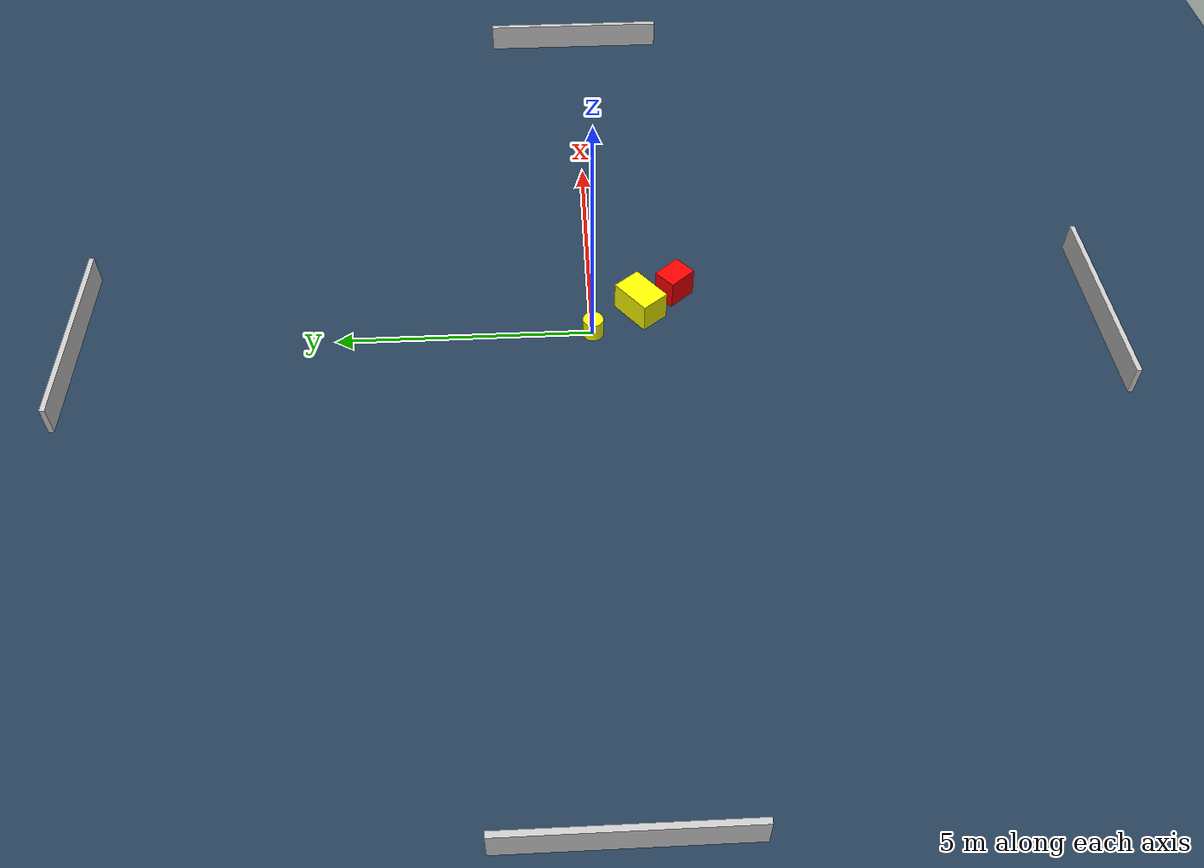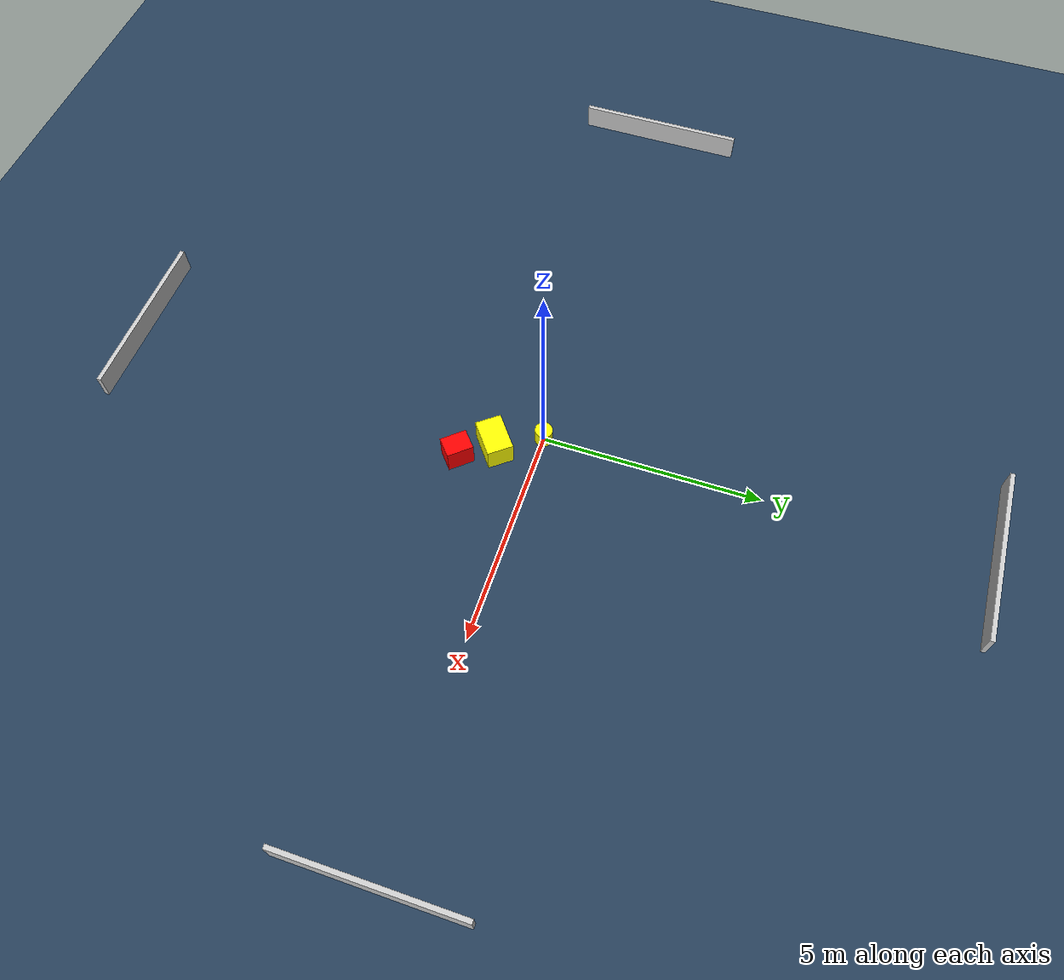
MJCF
<?xml version="1.0" ?>
<mujoco model="generated_environment">
  <option timestep="0.01" integrator="RK4" cone="elliptic"/>
  <default>
    <geom density="1"/>
  </default>
  <asset>
    <texture builtin="gradient" height="3072" name="skybox" rgb1="0.3 0.5 0.7" rgb2="0 0 0" type="skybox" width="512"/>
    <texture builtin="checker" height="300" name="groundplane" rgb1="0.2 0.3 0.4" rgb2="0.1 0.2 0.3" type="2d" width="300"/>
    <material name="groundplane" reflectance="0.2" texrepeat="5 5" texture="groundplane"/>
  </asset>
  <worldbody>
    <light dir="0 0 -1" directional="true" pos="0 0 1.5"/>
    <geom condim="3" friction="0.5 0.005 0.001" material="groundplane" name="floor" pos="0 0 0" size="0 0 0.05" type="plane"/>
    <body name="walls">
      <geom name="wall_1" condim="4" pos="-10.0 0.0 0.3" rgba="0.800000011920929 0.800000011920929 0.800000011920929 1.0" size="0.05 2.0 0.3" type="box"/>
      <geom name="wall_2" condim="4" pos="10.0 0.0 0.3" rgba="0.800000011920929 0.800000011920929 0.800000011920929 1.0" size="0.05 2.0 0.3" type="box"/>
      <geom name="wall_3" condim="4" pos="0.0 -10.0 0.3" rgba="0.800000011920929 0.800000011920929 0.800000011920929 1.0" size="2.0 0.05 0.3" type="box"/>
      <geom name="wall_4" condim="4" pos="0.0 10.0 0.3" rgba="0.800000011920929 0.800000011920929 0.800000011920929 1.0" size="2.0 0.05 0.3" type="box"/>
    </body>
    <body name="robot">
      <joint name="joint_x" type="slide" pos="0 0 0" axis="1 0 0"/>
      <joint name="joint_y" type="slide" pos="0 0 0" axis="0 1 0"/>
      <geom name="robot" type="cylinder" pos="0.0 0.0 0.2" size="0.2 0.2 0.0" mass="5.0" friction="1.0 0.005 0.0001" condim="4" rgba="1.0 1.0 0.0 1.0"/>
    </body>
    <body name="obstacle_1_movable">
      <geom name="obstacle_1_movable" condim="4" pos="0.5682262149531302 -0.9667264172670305 0.3" euler="0 0 308.1385624412188" friction="0.0 0.005 0.001" rgba="1.0 1.0 0.0 1.0" size="0.2968006354304398 0.4314563439834605 0.3" type="box" mass="0.1"/>
      <joint type="free"/>
    </body>
    <body name="obstacle_2_static">
      <geom name="obstacle_2_static" condim="4" pos="1.035331431723882 -1.6756373969370355 0.3" euler="0 0 40.78665186198868" friction="0.0 0.005 0.001" rgba="1.0 0.0 0.0 1.0" size="0.23693561694781815 0.30297275322141304 0.3" type="box"/>
    </body>
  </worldbody>
  <actuator>
    <motor name="actuator_x" joint="joint_x" gear="1" ctrlrange="-1 1"/>
    <motor name="actuator_y" joint="joint_y" gear="1" ctrlrange="-1 1"/>
  </actuator>
</mujoco>
